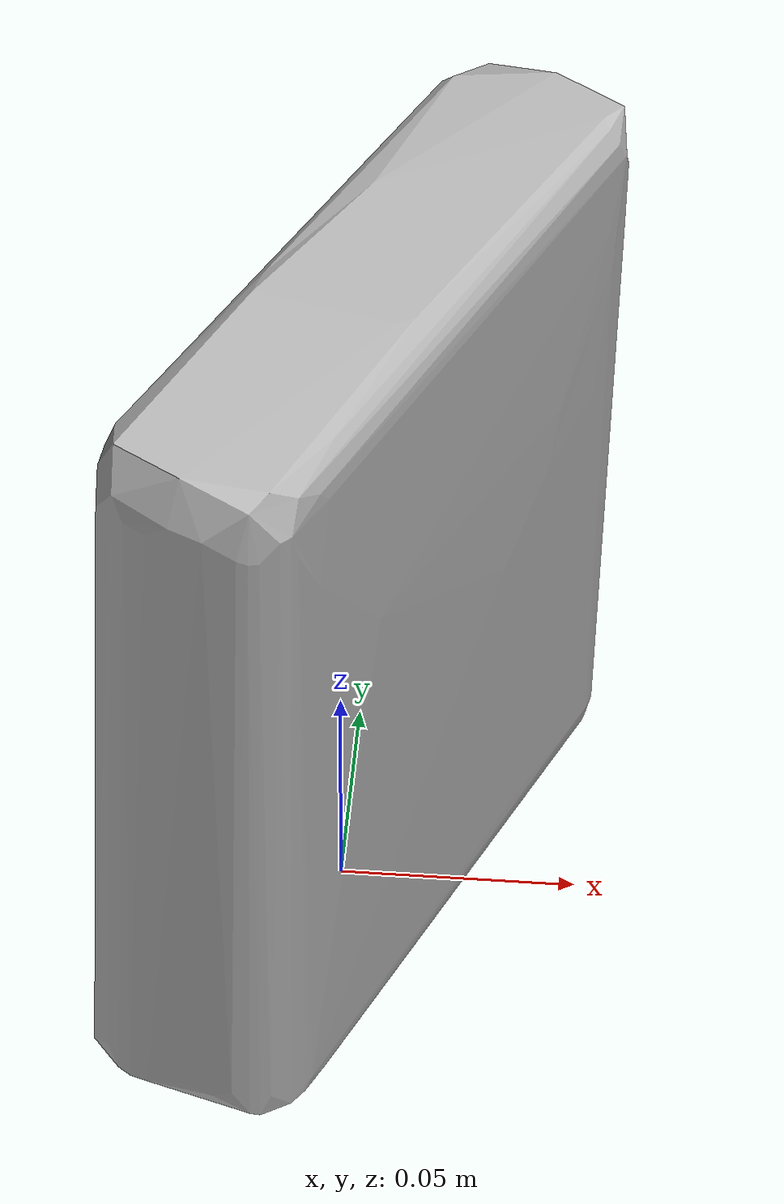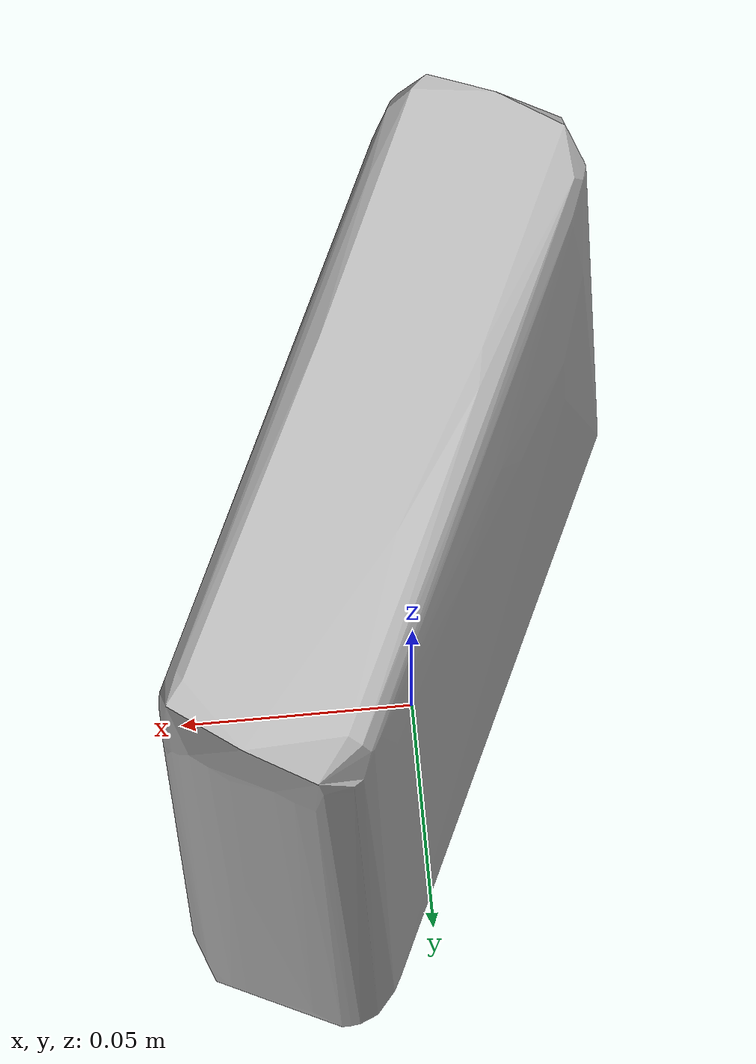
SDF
<?xml version='1.0'?>
<sdf version="1.4">
  <model name="quaker_chewy_smores">
    <static>false</static>
    <link name="link">
      <inertial>
        <pose>0.004716973733212433 -0.0037978613001486243 0.08389887687279007 -3.113921178918828 -0.03324321930188743 2.7086955225758906</pose>
        <mass>0.081356740495590673</mass>
        <inertia>
          <ixx>0.00045352274170854196</ixx>
          <ixy>6.562501410839256e-20</ixy>
          <ixz>4.898967704534876e-21</ixz>
          <iyy>0.00026595140381326126</iyy>
          <iyz>-3.71939088136775e-21</iyz>
          <izz>0.0002286796153417918</izz>
        </inertia>
      </inertial>
      <collision name="collision">
        <geometry>
          <mesh>
            <!-- Use a downsampled mesh for collisions -->
            <uri>model:///quaker_chewy_smores/quaker_chewy_smores_250_collision.obj</uri>
	        </mesh>
        </geometry>
        <surface>
      </surface>
      </collision>
      <visual name="visual">
        <geometry>
          <mesh>
            <uri>model:///quaker_chewy_smores/optimized_tsdf_texture_mapped_mesh.obj</uri>
	        </mesh>
        </geometry>
        <material>
          <script>
            <uri>model:///quaker_chewy_smores/quaker_chewy_smores.material</uri>
            <name>quaker_chewy_smores</name>
          </script>
        </material>
      </visual>
    </link>
  </model>
</sdf>
